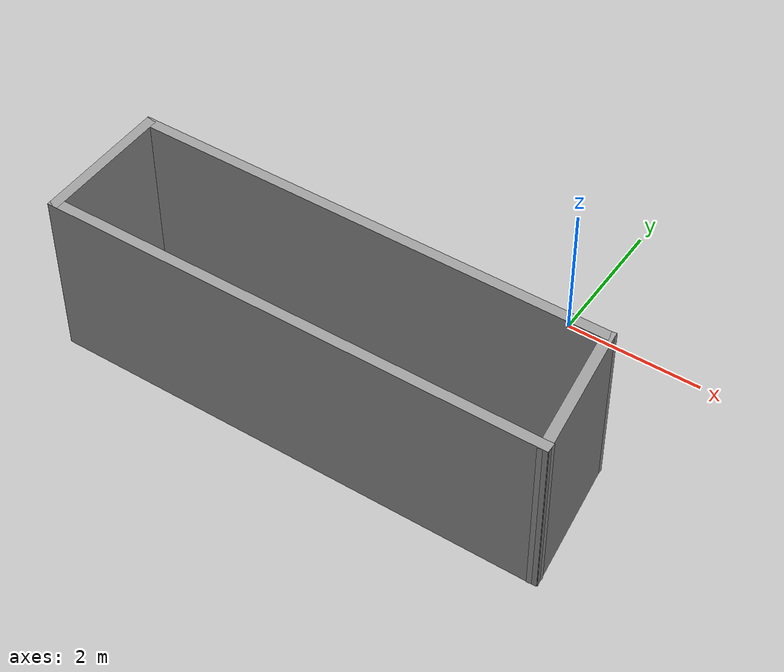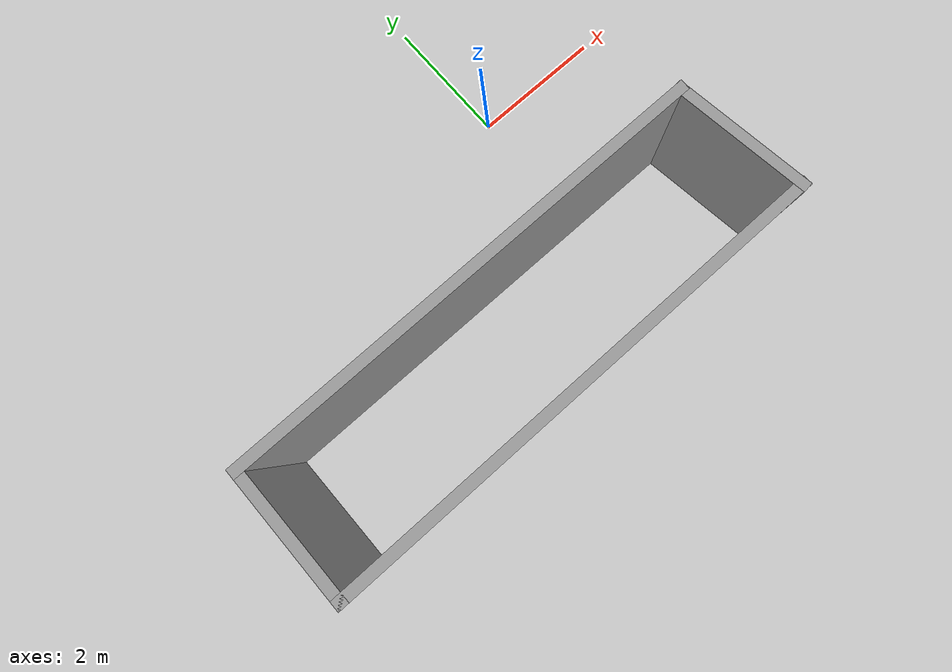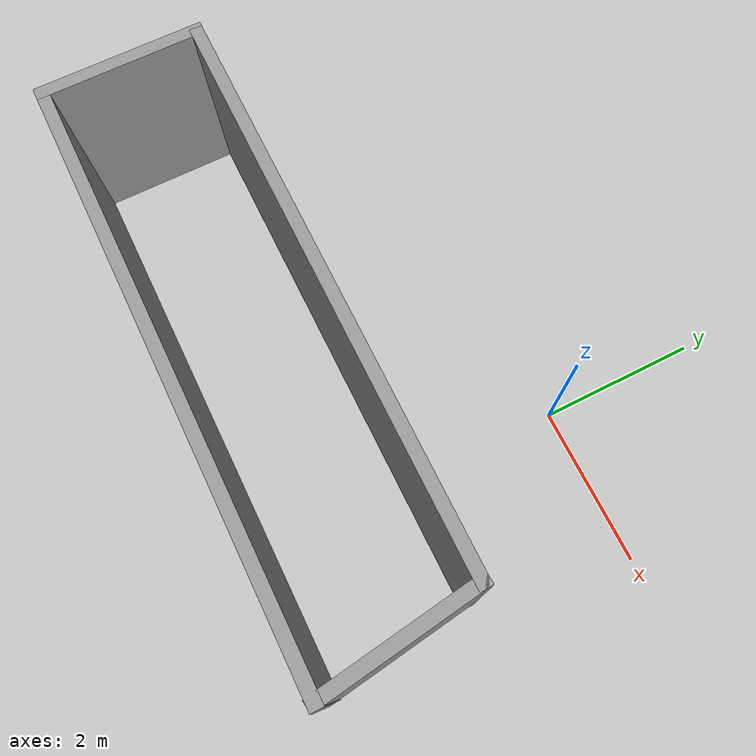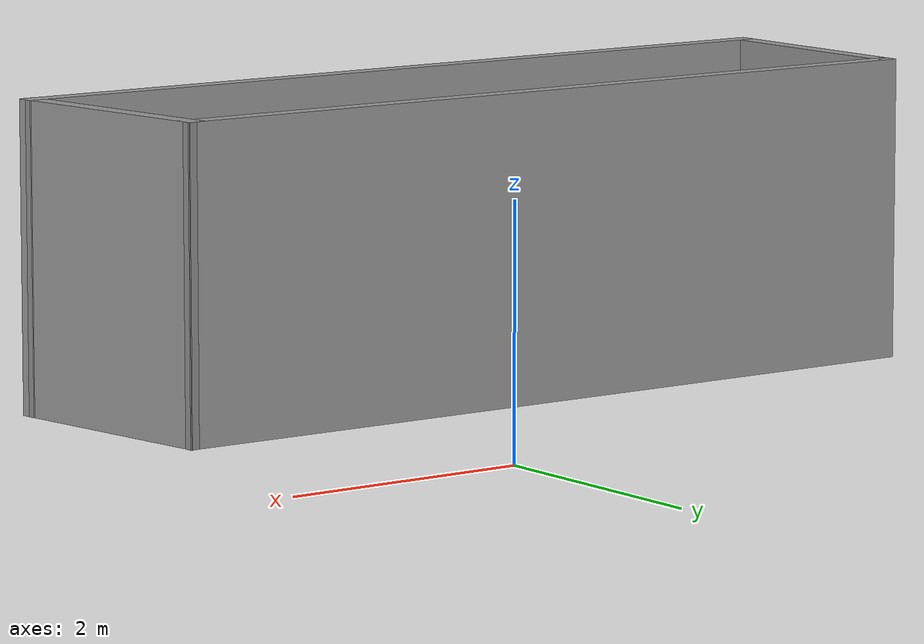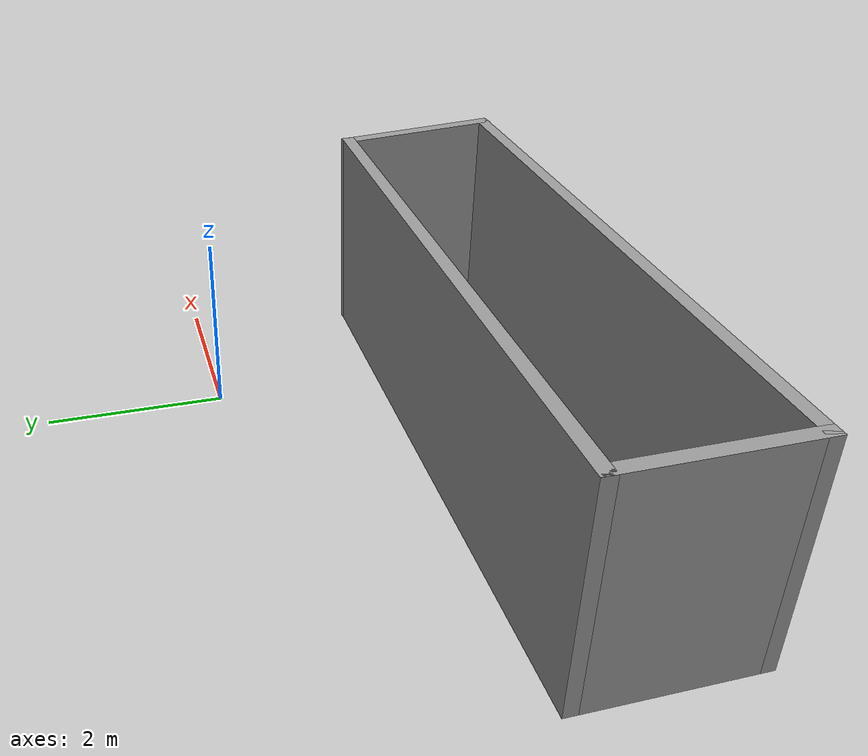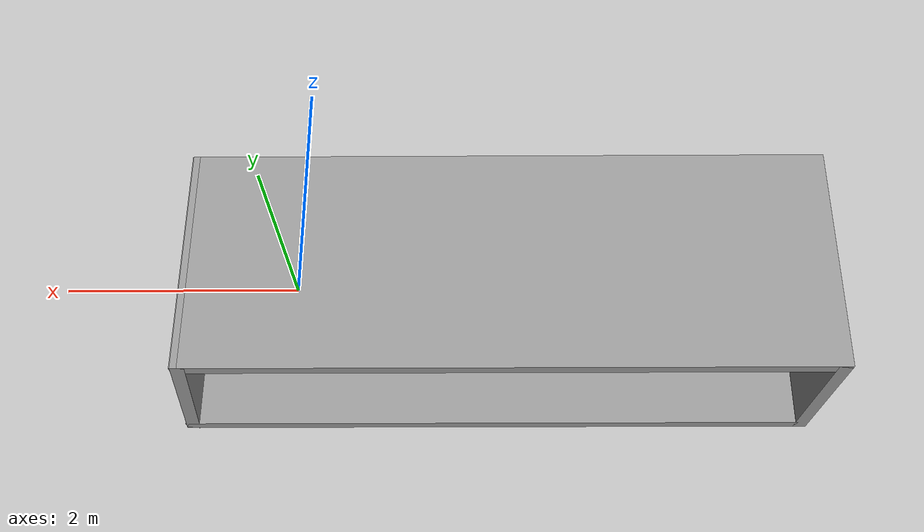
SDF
<?xml version='1.0'?>
<sdf version='1.7'>
  <model name='my_hospital'>
    <pose>-1.75532 -1.97218 0 0 -0 0</pose>
    <link name='Wall_0'>
      <collision name='Wall_0_Collision'>
        <geometry>
          <box>
            <size>7 0.15 2.5</size>
          </box>
        </geometry>
        <pose>0 0 1.25 0 -0 0</pose>
      </collision>
      <visual name='Wall_0_Visual'>
        <pose>0 0 1.25 0 -0 0</pose>
        <geometry>
          <box>
            <size>7 0.15 2.5</size>
          </box>
        </geometry>
        <material>
          <script>
            <uri>file://media/materials/scripts/gazebo.material</uri>
            <name>Gazebo/Grey</name>
          </script>
          <ambient>1 1 1 1</ambient>
        </material>
        <meta>
          <layer>0</layer>
        </meta>
      </visual>
      <pose>-0.129684 -0.037816 0 0 -0 3.14159</pose>
    </link>
    <link name='Wall_1'>
      <collision name='Wall_1_Collision'>
        <geometry>
          <box>
            <size>2 0.15 2.5</size>
          </box>
        </geometry>
        <pose>0 0 1.25 0 -0 0</pose>
      </collision>
      <visual name='Wall_1_Visual'>
        <pose>0 0 1.25 0 -0 0</pose>
        <geometry>
          <box>
            <size>2 0.15 2.5</size>
          </box>
        </geometry>
        <material>
          <script>
            <uri>file://media/materials/scripts/gazebo.material</uri>
            <name>Gazebo/Grey</name>
          </script>
          <ambient>1 1 1 1</ambient>
        </material>
        <meta>
          <layer>0</layer>
        </meta>
      </visual>
      <pose>-3.55468 -0.962816 0 0 -0 -1.5708</pose>
    </link>
    <link name='Wall_2'>
      <collision name='Wall_2_Collision'>
        <geometry>
          <box>
            <size>7.25 0.15 2.5</size>
          </box>
        </geometry>
        <pose>0 0 1.25 0 -0 0</pose>
      </collision>
      <visual name='Wall_2_Visual'>
        <pose>0 0 1.25 0 -0 0</pose>
        <geometry>
          <box>
            <size>7.25 0.15 2.5</size>
          </box>
        </geometry>
        <material>
          <script>
            <uri>file://media/materials/scripts/gazebo.material</uri>
            <name>Gazebo/Grey</name>
          </script>
          <ambient>1 1 1 1</ambient>
        </material>
        <meta>
          <layer>0</layer>
        </meta>
      </visual>
      <pose>-0.004684 -1.88782 0 0 -0 0</pose>
    </link>
    <link name='Wall_3'>
      <collision name='Wall_3_Collision'>
        <geometry>
          <box>
            <size>2.01681 0.15 2.5</size>
          </box>
        </geometry>
        <pose>0 0 1.25 0 -0 0</pose>
      </collision>
      <visual name='Wall_3_Visual'>
        <pose>0 0 1.25 0 -0 0</pose>
        <geometry>
          <box>
            <size>2.01681 0.15 2.5</size>
          </box>
        </geometry>
        <material>
          <script>
            <uri>file://media/materials/scripts/gazebo.material</uri>
            <name>Gazebo/Grey</name>
          </script>
          <ambient>1 1 1 1</ambient>
        </material>
        <meta>
          <layer>0</layer>
        </meta>
      </visual>
      <pose>3.42032 -0.962816 0 0 -0 1.70512</pose>
    </link>
    <static>1</static>
  </model>
</sdf>
